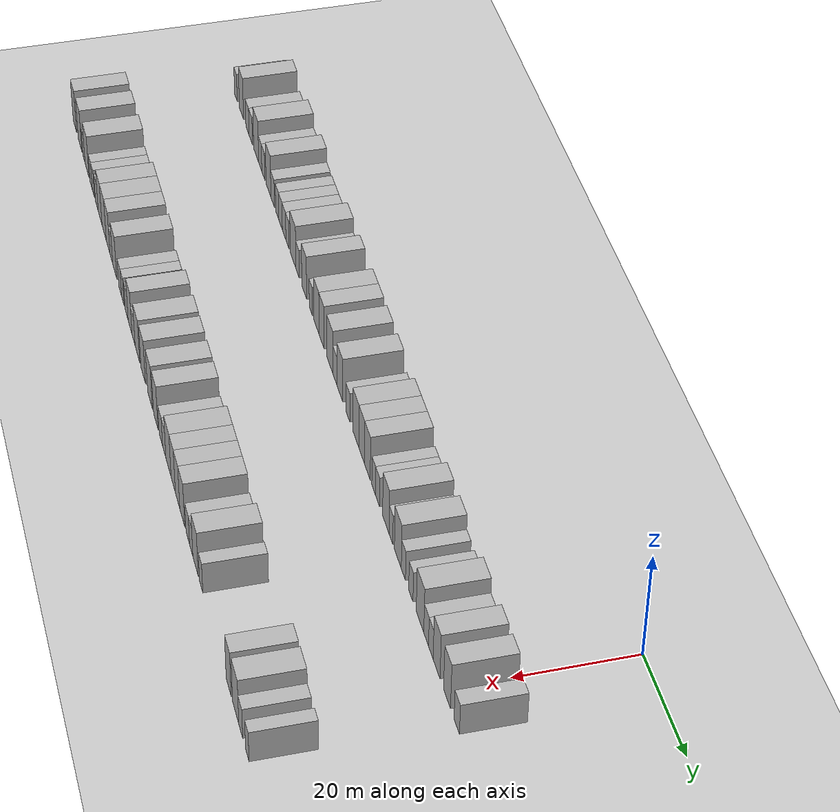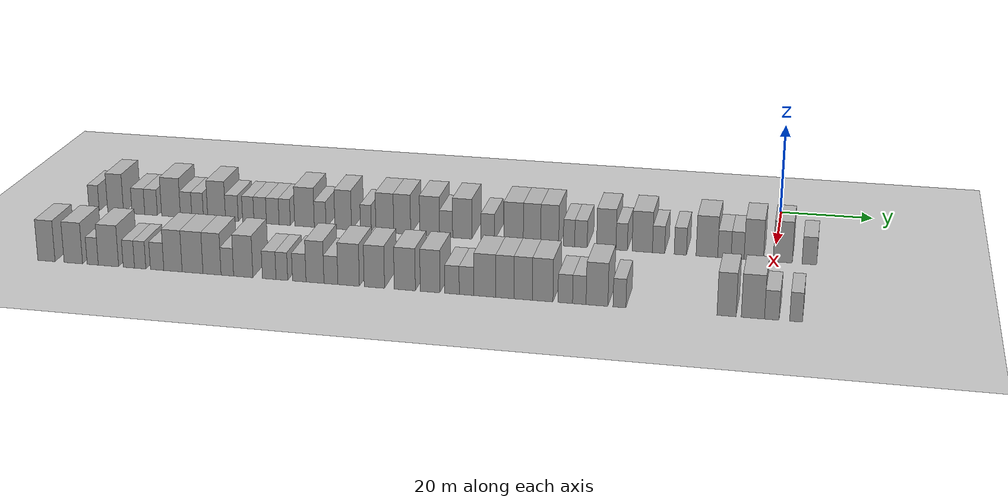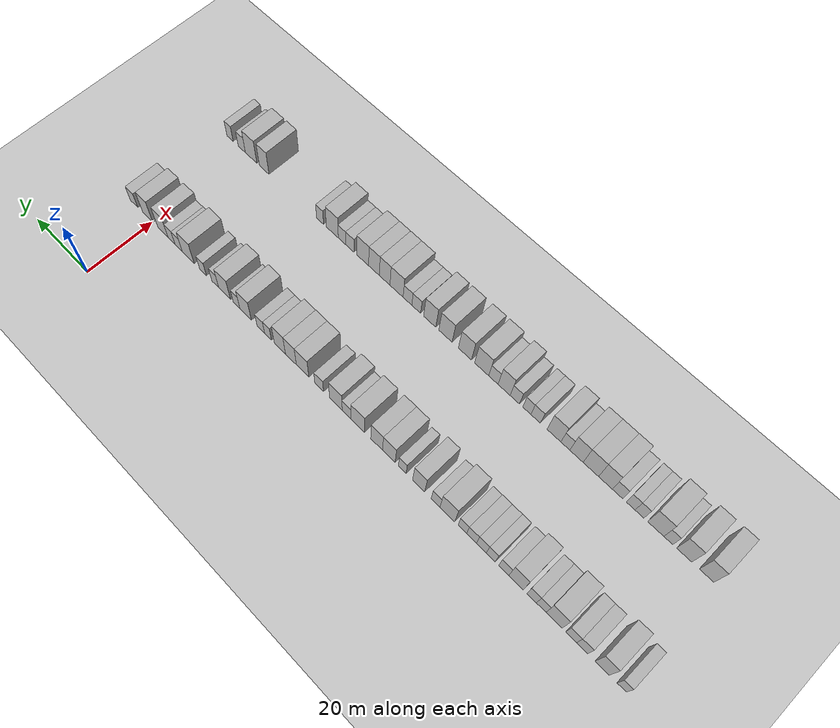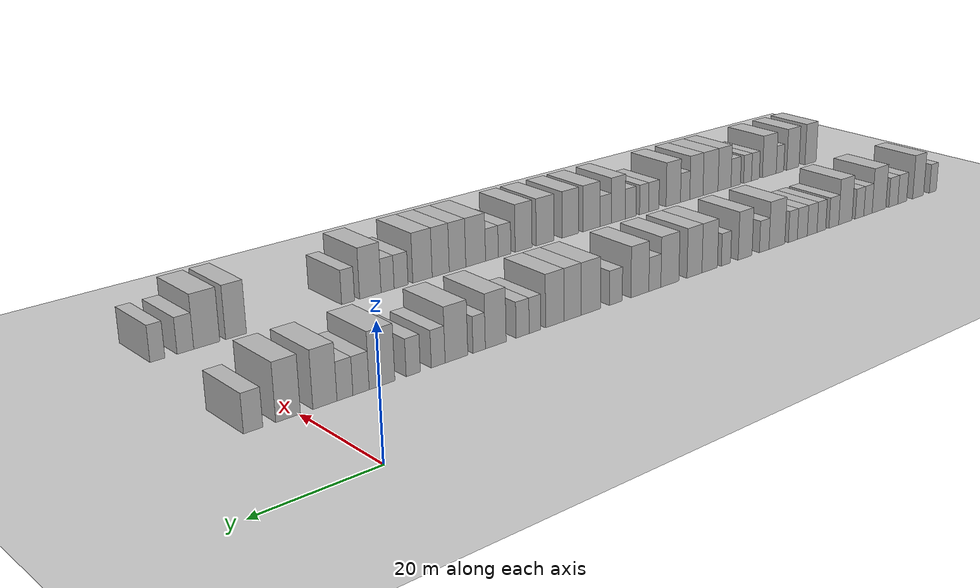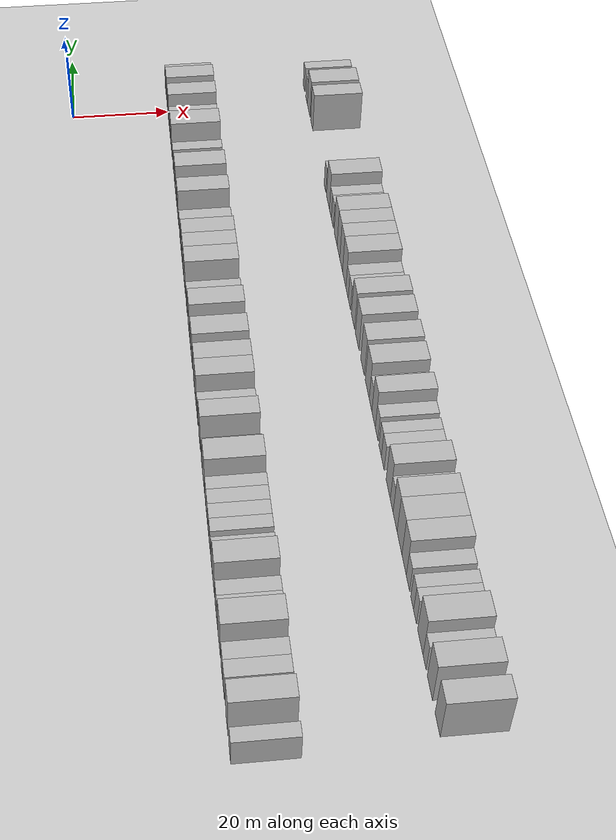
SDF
<sdf version="1.6">
 <world name="default">
  <include><name>ground_plane_1</name><uri>model://HANNAS_ground_plane</uri></include>
  <model name="building_72">
   <static>1</static>
   <pose>25.0000 -149.7639 0 0.000000 0.000000 0.000000</pose>
   <link name="link">
    <pose>0 0 3.00 0 0 0</pose>
    <collision name="collision"><geometry><box><size>10.0000 2.4107 6.0000</size></box></geometry></collision>
    <visual name="visual">
     <cast_shadows>0</cast_shadows>
     <geometry><box><size>10.0000 2.4107 6.0000</size></box></geometry>
     <material>
      <script>
       <uri>model://HANNAS_wall/materials/scripts</uri>
       <uri>model://HANNAS_wall/materials/textures</uri>
       <name>vrc/HANNAS_wall</name>
      </script>
     </material>
    </visual>
   </link>
  </model>
  <model name="building_73">
   <static>1</static>
   <pose>25.0000 -144.6903 0 0.000000 0.000000 0.000000</pose>
   <link name="link">
    <pose>0 0 4.50 0 0 0</pose>
    <collision name="collision"><geometry><box><size>10.0000 3.7367 9.0000</size></box></geometry></collision>
    <visual name="visual">
     <cast_shadows>0</cast_shadows>
     <geometry><box><size>10.0000 3.7367 9.0000</size></box></geometry>
     <material>
      <script>
       <uri>model://HANNAS_wall/materials/scripts</uri>
       <uri>model://HANNAS_wall/materials/textures</uri>
       <name>vrc/HANNAS_wall</name>
      </script>
     </material>
    </visual>
   </link>
  </model>
  <model name="building_74">
   <static>1</static>
   <pose>25.0000 -139.3331 0 0.000000 0.000000 0.000000</pose>
   <link name="link">
    <pose>0 0 3.00 0 0 0</pose>
    <collision name="collision"><geometry><box><size>10.0000 2.9777 6.0000</size></box></geometry></collision>
    <visual name="visual">
     <cast_shadows>0</cast_shadows>
     <geometry><box><size>10.0000 2.9777 6.0000</size></box></geometry>
     <material>
      <script>
       <uri>model://HANNAS_wall/materials/scripts</uri>
       <uri>model://HANNAS_wall/materials/textures</uri>
       <name>vrc/HANNAS_wall</name>
      </script>
     </material>
    </visual>
   </link>
  </model>
  <model name="building_75">
   <static>1</static>
   <pose>25.0000 -136.3701 0 0.000000 0.000000 0.000000</pose>
   <link name="link">
    <pose>0 0 3.00 0 0 0</pose>
    <collision name="collision"><geometry><box><size>10.0000 2.9482 6.0000</size></box></geometry></collision>
    <visual name="visual">
     <cast_shadows>0</cast_shadows>
     <geometry><box><size>10.0000 2.9482 6.0000</size></box></geometry>
     <material>
      <script>
       <uri>model://HANNAS_wall/materials/scripts</uri>
       <uri>model://HANNAS_wall/materials/textures</uri>
       <name>vrc/HANNAS_wall</name>
      </script>
     </material>
    </visual>
   </link>
  </model>
  <model name="building_76">
   <static>1</static>
   <pose>25.0000 -131.7027 0 0.000000 0.000000 0.000000</pose>
   <link name="link">
    <pose>0 0 4.50 0 0 0</pose>
    <collision name="collision"><geometry><box><size>10.0000 4.3865 9.0000</size></box></geometry></collision>
    <visual name="visual">
     <cast_shadows>0</cast_shadows>
     <geometry><box><size>10.0000 4.3865 9.0000</size></box></geometry>
     <material>
      <script>
       <uri>model://HANNAS_wall/materials/scripts</uri>
       <uri>model://HANNAS_wall/materials/textures</uri>
       <name>vrc/HANNAS_wall</name>
      </script>
     </material>
    </visual>
   </link>
  </model>
  <model name="building_77">
   <static>1</static>
   <pose>25.0000 -128.1891 0 0.000000 0.000000 0.000000</pose>
   <link name="link">
    <pose>0 0 3.00 0 0 0</pose>
    <collision name="collision"><geometry><box><size>10.0000 2.6407 6.0000</size></box></geometry></collision>
    <visual name="visual">
     <cast_shadows>0</cast_shadows>
     <geometry><box><size>10.0000 2.6407 6.0000</size></box></geometry>
     <material>
      <script>
       <uri>model://HANNAS_wall/materials/scripts</uri>
       <uri>model://HANNAS_wall/materials/textures</uri>
       <name>vrc/HANNAS_wall</name>
      </script>
     </material>
    </visual>
   </link>
  </model>
  <model name="building_78">
   <static>1</static>
   <pose>25.0000 -125.5254 0 0.000000 0.000000 0.000000</pose>
   <link name="link">
    <pose>0 0 3.00 0 0 0</pose>
    <collision name="collision"><geometry><box><size>10.0000 2.6868 6.0000</size></box></geometry></collision>
    <visual name="visual">
     <cast_shadows>0</cast_shadows>
     <geometry><box><size>10.0000 2.6868 6.0000</size></box></geometry>
     <material>
      <script>
       <uri>model://HANNAS_wall/materials/scripts</uri>
       <uri>model://HANNAS_wall/materials/textures</uri>
       <name>vrc/HANNAS_wall</name>
      </script>
     </material>
    </visual>
   </link>
  </model>
  <model name="building_79">
   <static>1</static>
   <pose>25.0000 -121.1328 0 0.000000 0.000000 0.000000</pose>
   <link name="link">
    <pose>0 0 4.50 0 0 0</pose>
    <collision name="collision"><geometry><box><size>10.0000 4.0984 9.0000</size></box></geometry></collision>
    <visual name="visual">
     <cast_shadows>0</cast_shadows>
     <geometry><box><size>10.0000 4.0984 9.0000</size></box></geometry>
     <material>
      <script>
       <uri>model://HANNAS_wall/materials/scripts</uri>
       <uri>model://HANNAS_wall/materials/textures</uri>
       <name>vrc/HANNAS_wall</name>
      </script>
     </material>
    </visual>
   </link>
  </model>
  <model name="building_80">
   <static>1</static>
   <pose>25.0000 -117.6221 0 0.000000 0.000000 0.000000</pose>
   <link name="link">
    <pose>0 0 3.00 0 0 0</pose>
    <collision name="collision"><geometry><box><size>10.0000 2.9230 6.0000</size></box></geometry></collision>
    <visual name="visual">
     <cast_shadows>0</cast_shadows>
     <geometry><box><size>10.0000 2.9230 6.0000</size></box></geometry>
     <material>
      <script>
       <uri>model://HANNAS_wall/materials/scripts</uri>
       <uri>model://HANNAS_wall/materials/textures</uri>
       <name>vrc/HANNAS_wall</name>
      </script>
     </material>
    </visual>
   </link>
  </model>
  <model name="building_81">
   <static>1</static>
   <pose>25.0000 -113.8651 0 0.000000 0.000000 0.000000</pose>
   <link name="link">
    <pose>0 0 3.00 0 0 0</pose>
    <collision name="collision"><geometry><box><size>10.0000 2.5910 6.0000</size></box></geometry></collision>
    <visual name="visual">
     <cast_shadows>0</cast_shadows>
     <geometry><box><size>10.0000 2.5910 6.0000</size></box></geometry>
     <material>
      <script>
       <uri>model://HANNAS_wall/materials/scripts</uri>
       <uri>model://HANNAS_wall/materials/textures</uri>
       <name>vrc/HANNAS_wall</name>
      </script>
     </material>
    </visual>
   </link>
  </model>
  <model name="building_82">
   <static>1</static>
   <pose>25.0000 -111.1434 0 0.000000 0.000000 0.000000</pose>
   <link name="link">
    <pose>0 0 3.00 0 0 0</pose>
    <collision name="collision"><geometry><box><size>10.0000 2.8523 6.0000</size></box></geometry></collision>
    <visual name="visual">
     <cast_shadows>0</cast_shadows>
     <geometry><box><size>10.0000 2.8523 6.0000</size></box></geometry>
     <material>
      <script>
       <uri>model://HANNAS_wall/materials/scripts</uri>
       <uri>model://HANNAS_wall/materials/textures</uri>
       <name>vrc/HANNAS_wall</name>
      </script>
     </material>
    </visual>
   </link>
  </model>
  <model name="building_83">
   <static>1</static>
   <pose>25.0000 -108.2769 0 0.000000 0.000000 0.000000</pose>
   <link name="link">
    <pose>0 0 3.00 0 0 0</pose>
    <collision name="collision"><geometry><box><size>10.0000 2.8808 6.0000</size></box></geometry></collision>
    <visual name="visual">
     <cast_shadows>0</cast_shadows>
     <geometry><box><size>10.0000 2.8808 6.0000</size></box></geometry>
     <material>
      <script>
       <uri>model://HANNAS_wall/materials/scripts</uri>
       <uri>model://HANNAS_wall/materials/textures</uri>
       <name>vrc/HANNAS_wall</name>
      </script>
     </material>
    </visual>
   </link>
  </model>
  <model name="building_84">
   <static>1</static>
   <pose>25.0000 -105.5612 0 0.000000 0.000000 0.000000</pose>
   <link name="link">
    <pose>0 0 3.00 0 0 0</pose>
    <collision name="collision"><geometry><box><size>10.0000 2.5506 6.0000</size></box></geometry></collision>
    <visual name="visual">
     <cast_shadows>0</cast_shadows>
     <geometry><box><size>10.0000 2.5506 6.0000</size></box></geometry>
     <material>
      <script>
       <uri>model://HANNAS_wall/materials/scripts</uri>
       <uri>model://HANNAS_wall/materials/textures</uri>
       <name>vrc/HANNAS_wall</name>
      </script>
     </material>
    </visual>
   </link>
  </model>
  <model name="building_85">
   <static>1</static>
   <pose>25.0000 -101.0731 0 0.000000 0.000000 0.000000</pose>
   <link name="link">
    <pose>0 0 4.50 0 0 0</pose>
    <collision name="collision"><geometry><box><size>10.0000 4.4258 9.0000</size></box></geometry></collision>
    <visual name="visual">
     <cast_shadows>0</cast_shadows>
     <geometry><box><size>10.0000 4.4258 9.0000</size></box></geometry>
     <material>
      <script>
       <uri>model://HANNAS_wall/materials/scripts</uri>
       <uri>model://HANNAS_wall/materials/textures</uri>
       <name>vrc/HANNAS_wall</name>
      </script>
     </material>
    </visual>
   </link>
  </model>
  <model name="building_86">
   <static>1</static>
   <pose>25.0000 -97.5372 0 0.000000 0.000000 0.000000</pose>
   <link name="link">
    <pose>0 0 3.00 0 0 0</pose>
    <collision name="collision"><geometry><box><size>10.0000 2.6460 6.0000</size></box></geometry></collision>
    <visual name="visual">
     <cast_shadows>0</cast_shadows>
     <geometry><box><size>10.0000 2.6460 6.0000</size></box></geometry>
     <material>
      <script>
       <uri>model://HANNAS_wall/materials/scripts</uri>
       <uri>model://HANNAS_wall/materials/textures</uri>
       <name>vrc/HANNAS_wall</name>
      </script>
     </material>
    </visual>
   </link>
  </model>
  <model name="building_87">
   <static>1</static>
   <pose>25.0000 -92.3547 0 0.000000 0.000000 0.000000</pose>
   <link name="link">
    <pose>0 0 4.50 0 0 0</pose>
    <collision name="collision"><geometry><box><size>10.0000 3.7190 9.0000</size></box></geometry></collision>
    <visual name="visual">
     <cast_shadows>0</cast_shadows>
     <geometry><box><size>10.0000 3.7190 9.0000</size></box></geometry>
     <material>
      <script>
       <uri>model://HANNAS_wall/materials/scripts</uri>
       <uri>model://HANNAS_wall/materials/textures</uri>
       <name>vrc/HANNAS_wall</name>
      </script>
     </material>
    </visual>
   </link>
  </model>
  <model name="building_88">
   <static>1</static>
   <pose>25.0000 -87.2801 0 0.000000 0.000000 0.000000</pose>
   <link name="link">
    <pose>0 0 3.00 0 0 0</pose>
    <collision name="collision"><geometry><box><size>10.0000 2.4302 6.0000</size></box></geometry></collision>
    <visual name="visual">
     <cast_shadows>0</cast_shadows>
     <geometry><box><size>10.0000 2.4302 6.0000</size></box></geometry>
     <material>
      <script>
       <uri>model://HANNAS_wall/materials/scripts</uri>
       <uri>model://HANNAS_wall/materials/textures</uri>
       <name>vrc/HANNAS_wall</name>
      </script>
     </material>
    </visual>
   </link>
  </model>
  <model name="building_89">
   <static>1</static>
   <pose>25.0000 -83.0822 0 0.000000 0.000000 0.000000</pose>
   <link name="link">
    <pose>0 0 4.50 0 0 0</pose>
    <collision name="collision"><geometry><box><size>10.0000 3.9657 9.0000</size></box></geometry></collision>
    <visual name="visual">
     <cast_shadows>0</cast_shadows>
     <geometry><box><size>10.0000 3.9657 9.0000</size></box></geometry>
     <material>
      <script>
       <uri>model://HANNAS_wall/materials/scripts</uri>
       <uri>model://HANNAS_wall/materials/textures</uri>
       <name>vrc/HANNAS_wall</name>
      </script>
     </material>
    </visual>
   </link>
  </model>
  <model name="building_90">
   <static>1</static>
   <pose>25.0000 -79.2211 0 0.000000 0.000000 0.000000</pose>
   <link name="link">
    <pose>0 0 4.50 0 0 0</pose>
    <collision name="collision"><geometry><box><size>10.0000 3.7565 9.0000</size></box></geometry></collision>
    <visual name="visual">
     <cast_shadows>0</cast_shadows>
     <geometry><box><size>10.0000 3.7565 9.0000</size></box></geometry>
     <material>
      <script>
       <uri>model://HANNAS_wall/materials/scripts</uri>
       <uri>model://HANNAS_wall/materials/textures</uri>
       <name>vrc/HANNAS_wall</name>
      </script>
     </material>
    </visual>
   </link>
  </model>
  <model name="building_91">
   <static>1</static>
   <pose>25.0000 -73.1525 0 0.000000 0.000000 0.000000</pose>
   <link name="link">
    <pose>0 0 4.50 0 0 0</pose>
    <collision name="collision"><geometry><box><size>10.0000 4.3806 9.0000</size></box></geometry></collision>
    <visual name="visual">
     <cast_shadows>0</cast_shadows>
     <geometry><box><size>10.0000 4.3806 9.0000</size></box></geometry>
     <material>
      <script>
       <uri>model://HANNAS_wall/materials/scripts</uri>
       <uri>model://HANNAS_wall/materials/textures</uri>
       <name>vrc/HANNAS_wall</name>
      </script>
     </material>
    </visual>
   </link>
  </model>
  <model name="building_92">
   <static>1</static>
   <pose>25.0000 -69.5285 0 0.000000 0.000000 0.000000</pose>
   <link name="link">
    <pose>0 0 3.00 0 0 0</pose>
    <collision name="collision"><geometry><box><size>10.0000 2.8675 6.0000</size></box></geometry></collision>
    <visual name="visual">
     <cast_shadows>0</cast_shadows>
     <geometry><box><size>10.0000 2.8675 6.0000</size></box></geometry>
     <material>
      <script>
       <uri>model://HANNAS_wall/materials/scripts</uri>
       <uri>model://HANNAS_wall/materials/textures</uri>
       <name>vrc/HANNAS_wall</name>
      </script>
     </material>
    </visual>
   </link>
  </model>
  <model name="building_93">
   <static>1</static>
   <pose>25.0000 -65.9982 0 0.000000 0.000000 0.000000</pose>
   <link name="link">
    <pose>0 0 4.50 0 0 0</pose>
    <collision name="collision"><geometry><box><size>10.0000 4.1932 9.0000</size></box></geometry></collision>
    <visual name="visual">
     <cast_shadows>0</cast_shadows>
     <geometry><box><size>10.0000 4.1932 9.0000</size></box></geometry>
     <material>
      <script>
       <uri>model://HANNAS_wall/materials/scripts</uri>
       <uri>model://HANNAS_wall/materials/textures</uri>
       <name>vrc/HANNAS_wall</name>
      </script>
     </material>
    </visual>
   </link>
  </model>
  <model name="building_94">
   <static>1</static>
   <pose>25.0000 -60.4333 0 0.000000 0.000000 0.000000</pose>
   <link name="link">
    <pose>0 0 3.00 0 0 0</pose>
    <collision name="collision"><geometry><box><size>10.0000 2.9366 6.0000</size></box></geometry></collision>
    <visual name="visual">
     <cast_shadows>0</cast_shadows>
     <geometry><box><size>10.0000 2.9366 6.0000</size></box></geometry>
     <material>
      <script>
       <uri>model://HANNAS_wall/materials/scripts</uri>
       <uri>model://HANNAS_wall/materials/textures</uri>
       <name>vrc/HANNAS_wall</name>
      </script>
     </material>
    </visual>
   </link>
  </model>
  <model name="building_95">
   <static>1</static>
   <pose>25.0000 -54.8550 0 0.000000 0.000000 0.000000</pose>
   <link name="link">
    <pose>0 0 4.50 0 0 0</pose>
    <collision name="collision"><geometry><box><size>10.0000 4.2199 9.0000</size></box></geometry></collision>
    <visual name="visual">
     <cast_shadows>0</cast_shadows>
     <geometry><box><size>10.0000 4.2199 9.0000</size></box></geometry>
     <material>
      <script>
       <uri>model://HANNAS_wall/materials/scripts</uri>
       <uri>model://HANNAS_wall/materials/textures</uri>
       <name>vrc/HANNAS_wall</name>
      </script>
     </material>
    </visual>
   </link>
  </model>
  <model name="building_96">
   <static>1</static>
   <pose>25.0000 -50.8643 0 0.000000 0.000000 0.000000</pose>
   <link name="link">
    <pose>0 0 4.50 0 0 0</pose>
    <collision name="collision"><geometry><box><size>10.0000 3.7616 9.0000</size></box></geometry></collision>
    <visual name="visual">
     <cast_shadows>0</cast_shadows>
     <geometry><box><size>10.0000 3.7616 9.0000</size></box></geometry>
     <material>
      <script>
       <uri>model://HANNAS_wall/materials/scripts</uri>
       <uri>model://HANNAS_wall/materials/textures</uri>
       <name>vrc/HANNAS_wall</name>
      </script>
     </material>
    </visual>
   </link>
  </model>
  <model name="building_97">
   <static>1</static>
   <pose>25.0000 -47.0470 0 0.000000 0.000000 0.000000</pose>
   <link name="link">
    <pose>0 0 4.50 0 0 0</pose>
    <collision name="collision"><geometry><box><size>10.0000 3.8730 9.0000</size></box></geometry></collision>
    <visual name="visual">
     <cast_shadows>0</cast_shadows>
     <geometry><box><size>10.0000 3.8730 9.0000</size></box></geometry>
     <material>
      <script>
       <uri>model://HANNAS_wall/materials/scripts</uri>
       <uri>model://HANNAS_wall/materials/textures</uri>
       <name>vrc/HANNAS_wall</name>
      </script>
     </material>
    </visual>
   </link>
  </model>
  <model name="building_98">
   <static>1</static>
   <pose>25.0000 -42.9027 0 0.000000 0.000000 0.000000</pose>
   <link name="link">
    <pose>0 0 3.00 0 0 0</pose>
    <collision name="collision"><geometry><box><size>10.0000 2.4157 6.0000</size></box></geometry></collision>
    <visual name="visual">
     <cast_shadows>0</cast_shadows>
     <geometry><box><size>10.0000 2.4157 6.0000</size></box></geometry>
     <material>
      <script>
       <uri>model://HANNAS_wall/materials/scripts</uri>
       <uri>model://HANNAS_wall/materials/textures</uri>
       <name>vrc/HANNAS_wall</name>
      </script>
     </material>
    </visual>
   </link>
  </model>
  <model name="building_99">
   <static>1</static>
   <pose>25.0000 -40.3628 0 0.000000 0.000000 0.000000</pose>
   <link name="link">
    <pose>0 0 3.00 0 0 0</pose>
    <collision name="collision"><geometry><box><size>10.0000 2.6640 6.0000</size></box></geometry></collision>
    <visual name="visual">
     <cast_shadows>0</cast_shadows>
     <geometry><box><size>10.0000 2.6640 6.0000</size></box></geometry>
     <material>
      <script>
       <uri>model://HANNAS_wall/materials/scripts</uri>
       <uri>model://HANNAS_wall/materials/textures</uri>
       <name>vrc/HANNAS_wall</name>
      </script>
     </material>
    </visual>
   </link>
  </model>
  <model name="building_100">
   <static>1</static>
   <pose>25.0000 -34.9728 0 0.000000 0.000000 0.000000</pose>
   <link name="link">
    <pose>0 0 4.50 0 0 0</pose>
    <collision name="collision"><geometry><box><size>10.0000 4.1158 9.0000</size></box></geometry></collision>
    <visual name="visual">
     <cast_shadows>0</cast_shadows>
     <geometry><box><size>10.0000 4.1158 9.0000</size></box></geometry>
     <material>
      <script>
       <uri>model://HANNAS_wall/materials/scripts</uri>
       <uri>model://HANNAS_wall/materials/textures</uri>
       <name>vrc/HANNAS_wall</name>
      </script>
     </material>
    </visual>
   </link>
  </model>
  <model name="building_101">
   <static>1</static>
   <pose>25.0000 -31.7140 0 0.000000 0.000000 0.000000</pose>
   <link name="link">
    <pose>0 0 3.00 0 0 0</pose>
    <collision name="collision"><geometry><box><size>10.0000 2.4019 6.0000</size></box></geometry></collision>
    <visual name="visual">
     <cast_shadows>0</cast_shadows>
     <geometry><box><size>10.0000 2.4019 6.0000</size></box></geometry>
     <material>
      <script>
       <uri>model://HANNAS_wall/materials/scripts</uri>
       <uri>model://HANNAS_wall/materials/textures</uri>
       <name>vrc/HANNAS_wall</name>
      </script>
     </material>
    </visual>
   </link>
  </model>
  <model name="building_102">
   <static>1</static>
   <pose>25.0000 -27.3661 0 0.000000 0.000000 0.000000</pose>
   <link name="link">
    <pose>0 0 4.50 0 0 0</pose>
    <collision name="collision"><geometry><box><size>10.0000 4.2939 9.0000</size></box></geometry></collision>
    <visual name="visual">
     <cast_shadows>0</cast_shadows>
     <geometry><box><size>10.0000 4.2939 9.0000</size></box></geometry>
     <material>
      <script>
       <uri>model://HANNAS_wall/materials/scripts</uri>
       <uri>model://HANNAS_wall/materials/textures</uri>
       <name>vrc/HANNAS_wall</name>
      </script>
     </material>
    </visual>
   </link>
  </model>
  <model name="building_103">
   <static>1</static>
   <pose>25.0000 -23.9386 0 0.000000 0.000000 0.000000</pose>
   <link name="link">
    <pose>0 0 3.00 0 0 0</pose>
    <collision name="collision"><geometry><box><size>10.0000 2.5613 6.0000</size></box></geometry></collision>
    <visual name="visual">
     <cast_shadows>0</cast_shadows>
     <geometry><box><size>10.0000 2.5613 6.0000</size></box></geometry>
     <material>
      <script>
       <uri>model://HANNAS_wall/materials/scripts</uri>
       <uri>model://HANNAS_wall/materials/textures</uri>
       <name>vrc/HANNAS_wall</name>
      </script>
     </material>
    </visual>
   </link>
  </model>
  <model name="building_104">
   <static>1</static>
   <pose>25.0000 -19.3728 0 0.000000 0.000000 0.000000</pose>
   <link name="link">
    <pose>0 0 3.00 0 0 0</pose>
    <collision name="collision"><geometry><box><size>10.0000 2.5702 6.0000</size></box></geometry></collision>
    <visual name="visual">
     <cast_shadows>0</cast_shadows>
     <geometry><box><size>10.0000 2.5702 6.0000</size></box></geometry>
     <material>
      <script>
       <uri>model://HANNAS_wall/materials/scripts</uri>
       <uri>model://HANNAS_wall/materials/textures</uri>
       <name>vrc/HANNAS_wall</name>
      </script>
     </material>
    </visual>
   </link>
  </model>
  <model name="building_105">
   <static>1</static>
   <pose>25.0000 -13.8428 0 0.000000 0.000000 0.000000</pose>
   <link name="link">
    <pose>0 0 4.50 0 0 0</pose>
    <collision name="collision"><geometry><box><size>10.0000 4.4898 9.0000</size></box></geometry></collision>
    <visual name="visual">
     <cast_shadows>0</cast_shadows>
     <geometry><box><size>10.0000 4.4898 9.0000</size></box></geometry>
     <material>
      <script>
       <uri>model://HANNAS_wall/materials/scripts</uri>
       <uri>model://HANNAS_wall/materials/textures</uri>
       <name>vrc/HANNAS_wall</name>
      </script>
     </material>
    </visual>
   </link>
  </model>
  <model name="building_106">
   <static>1</static>
   <pose>25.0000 -10.2093 0 0.000000 0.000000 0.000000</pose>
   <link name="link">
    <pose>0 0 3.00 0 0 0</pose>
    <collision name="collision"><geometry><box><size>10.0000 2.7771 6.0000</size></box></geometry></collision>
    <visual name="visual">
     <cast_shadows>0</cast_shadows>
     <geometry><box><size>10.0000 2.7771 6.0000</size></box></geometry>
     <material>
      <script>
       <uri>model://HANNAS_wall/materials/scripts</uri>
       <uri>model://HANNAS_wall/materials/textures</uri>
       <name>vrc/HANNAS_wall</name>
      </script>
     </material>
    </visual>
   </link>
  </model>
  <model name="building_107">
   <static>1</static>
   <pose>25.0000 -7.4839 0 0.000000 0.000000 0.000000</pose>
   <link name="link">
    <pose>0 0 3.00 0 0 0</pose>
    <collision name="collision"><geometry><box><size>10.0000 2.6736 6.0000</size></box></geometry></collision>
    <visual name="visual">
     <cast_shadows>0</cast_shadows>
     <geometry><box><size>10.0000 2.6736 6.0000</size></box></geometry>
     <material>
      <script>
       <uri>model://HANNAS_wall/materials/scripts</uri>
       <uri>model://HANNAS_wall/materials/textures</uri>
       <name>vrc/HANNAS_wall</name>
      </script>
     </material>
    </visual>
   </link>
  </model>
  <model name="building_108">
   <static>1</static>
   <pose>25.0000 -4.1596 0 0.000000 0.000000 0.000000</pose>
   <link name="link">
    <pose>0 0 4.50 0 0 0</pose>
    <collision name="collision"><geometry><box><size>10.0000 3.9751 9.0000</size></box></geometry></collision>
    <visual name="visual">
     <cast_shadows>0</cast_shadows>
     <geometry><box><size>10.0000 3.9751 9.0000</size></box></geometry>
     <material>
      <script>
       <uri>model://HANNAS_wall/materials/scripts</uri>
       <uri>model://HANNAS_wall/materials/textures</uri>
       <name>vrc/HANNAS_wall</name>
      </script>
     </material>
    </visual>
   </link>
  </model>
  <model name="building_109">
   <static>1</static>
   <pose>25.0000 1.7895 0 0.000000 0.000000 0.000000</pose>
   <link name="link">
    <pose>0 0 4.50 0 0 0</pose>
    <collision name="collision"><geometry><box><size>10.0000 3.9231 9.0000</size></box></geometry></collision>
    <visual name="visual">
     <cast_shadows>0</cast_shadows>
     <geometry><box><size>10.0000 3.9231 9.0000</size></box></geometry>
     <material>
      <script>
       <uri>model://HANNAS_wall/materials/scripts</uri>
       <uri>model://HANNAS_wall/materials/textures</uri>
       <name>vrc/HANNAS_wall</name>
      </script>
     </material>
    </visual>
   </link>
  </model>
  <model name="building_110">
   <static>1</static>
   <pose>25.0000 7.2394 0 0.000000 0.000000 0.000000</pose>
   <link name="link">
    <pose>0 0 3.00 0 0 0</pose>
    <collision name="collision"><geometry><box><size>10.0000 2.9767 6.0000</size></box></geometry></collision>
    <visual name="visual">
     <cast_shadows>0</cast_shadows>
     <geometry><box><size>10.0000 2.9767 6.0000</size></box></geometry>
     <material>
      <script>
       <uri>model://HANNAS_wall/materials/scripts</uri>
       <uri>model://HANNAS_wall/materials/textures</uri>
       <name>vrc/HANNAS_wall</name>
      </script>
     </material>
    </visual>
   </link>
  </model>
  <model name="building_293">
   <static>1</static>
   <pose>55.0000 -147.7000 0 0.000000 0.000000 0.000000</pose>
   <link name="link">
    <pose>0 0 4.50 0 0 0</pose>
    <collision name="collision"><geometry><box><size>10.0000 3.8156 9.0000</size></box></geometry></collision>
    <visual name="visual">
     <cast_shadows>0</cast_shadows>
     <geometry><box><size>10.0000 3.8156 9.0000</size></box></geometry>
     <material>
      <script>
       <uri>model://HANNAS_wall/materials/scripts</uri>
       <uri>model://HANNAS_wall/materials/textures</uri>
       <name>vrc/HANNAS_wall</name>
      </script>
     </material>
    </visual>
   </link>
  </model>
  <model name="building_294">
   <static>1</static>
   <pose>55.0000 -141.7543 0 0.000000 0.000000 0.000000</pose>
   <link name="link">
    <pose>0 0 4.50 0 0 0</pose>
    <collision name="collision"><geometry><box><size>10.0000 4.0759 9.0000</size></box></geometry></collision>
    <visual name="visual">
     <cast_shadows>0</cast_shadows>
     <geometry><box><size>10.0000 4.0759 9.0000</size></box></geometry>
     <material>
      <script>
       <uri>model://HANNAS_wall/materials/scripts</uri>
       <uri>model://HANNAS_wall/materials/textures</uri>
       <name>vrc/HANNAS_wall</name>
      </script>
     </material>
    </visual>
   </link>
  </model>
  <model name="building_295">
   <static>1</static>
   <pose>55.0000 -137.4959 0 0.000000 0.000000 0.000000</pose>
   <link name="link">
    <pose>0 0 3.00 0 0 0</pose>
    <collision name="collision"><geometry><box><size>10.0000 2.4409 6.0000</size></box></geometry></collision>
    <visual name="visual">
     <cast_shadows>0</cast_shadows>
     <geometry><box><size>10.0000 2.4409 6.0000</size></box></geometry>
     <material>
      <script>
       <uri>model://HANNAS_wall/materials/scripts</uri>
       <uri>model://HANNAS_wall/materials/textures</uri>
       <name>vrc/HANNAS_wall</name>
      </script>
     </material>
    </visual>
   </link>
  </model>
  <model name="building_296">
   <static>1</static>
   <pose>55.0000 -134.0514 0 0.000000 0.000000 0.000000</pose>
   <link name="link">
    <pose>0 0 4.50 0 0 0</pose>
    <collision name="collision"><geometry><box><size>10.0000 4.4480 9.0000</size></box></geometry></collision>
    <visual name="visual">
     <cast_shadows>0</cast_shadows>
     <geometry><box><size>10.0000 4.4480 9.0000</size></box></geometry>
     <material>
      <script>
       <uri>model://HANNAS_wall/materials/scripts</uri>
       <uri>model://HANNAS_wall/materials/textures</uri>
       <name>vrc/HANNAS_wall</name>
      </script>
     </material>
    </visual>
   </link>
  </model>
  <model name="building_297">
   <static>1</static>
   <pose>55.0000 -129.5975 0 0.000000 0.000000 0.000000</pose>
   <link name="link">
    <pose>0 0 3.00 0 0 0</pose>
    <collision name="collision"><geometry><box><size>10.0000 2.4599 6.0000</size></box></geometry></collision>
    <visual name="visual">
     <cast_shadows>0</cast_shadows>
     <geometry><box><size>10.0000 2.4599 6.0000</size></box></geometry>
     <material>
      <script>
       <uri>model://HANNAS_wall/materials/scripts</uri>
       <uri>model://HANNAS_wall/materials/textures</uri>
       <name>vrc/HANNAS_wall</name>
      </script>
     </material>
    </visual>
   </link>
  </model>
  <model name="building_298">
   <static>1</static>
   <pose>55.0000 -127.1387 0 0.000000 0.000000 0.000000</pose>
   <link name="link">
    <pose>0 0 3.00 0 0 0</pose>
    <collision name="collision"><geometry><box><size>10.0000 2.4577 6.0000</size></box></geometry></collision>
    <visual name="visual">
     <cast_shadows>0</cast_shadows>
     <geometry><box><size>10.0000 2.4577 6.0000</size></box></geometry>
     <material>
      <script>
       <uri>model://HANNAS_wall/materials/scripts</uri>
       <uri>model://HANNAS_wall/materials/textures</uri>
       <name>vrc/HANNAS_wall</name>
      </script>
     </material>
    </visual>
   </link>
  </model>
  <model name="building_299">
   <static>1</static>
   <pose>55.0000 -123.4584 0 0.000000 0.000000 0.000000</pose>
   <link name="link">
    <pose>0 0 3.00 0 0 0</pose>
    <collision name="collision"><geometry><box><size>10.0000 2.9030 6.0000</size></box></geometry></collision>
    <visual name="visual">
     <cast_shadows>0</cast_shadows>
     <geometry><box><size>10.0000 2.9030 6.0000</size></box></geometry>
     <material>
      <script>
       <uri>model://HANNAS_wall/materials/scripts</uri>
       <uri>model://HANNAS_wall/materials/textures</uri>
       <name>vrc/HANNAS_wall</name>
      </script>
     </material>
    </visual>
   </link>
  </model>
  <model name="building_300">
   <static>1</static>
   <pose>55.0000 -120.0324 0 0.000000 0.000000 0.000000</pose>
   <link name="link">
    <pose>0 0 4.50 0 0 0</pose>
    <collision name="collision"><geometry><box><size>10.0000 3.9489 9.0000</size></box></geometry></collision>
    <visual name="visual">
     <cast_shadows>0</cast_shadows>
     <geometry><box><size>10.0000 3.9489 9.0000</size></box></geometry>
     <material>
      <script>
       <uri>model://HANNAS_wall/materials/scripts</uri>
       <uri>model://HANNAS_wall/materials/textures</uri>
       <name>vrc/HANNAS_wall</name>
      </script>
     </material>
    </visual>
   </link>
  </model>
  <model name="building_301">
   <static>1</static>
   <pose>55.0000 -115.8211 0 0.000000 0.000000 0.000000</pose>
   <link name="link">
    <pose>0 0 4.50 0 0 0</pose>
    <collision name="collision"><geometry><box><size>10.0000 4.4736 9.0000</size></box></geometry></collision>
    <visual name="visual">
     <cast_shadows>0</cast_shadows>
     <geometry><box><size>10.0000 4.4736 9.0000</size></box></geometry>
     <material>
      <script>
       <uri>model://HANNAS_wall/materials/scripts</uri>
       <uri>model://HANNAS_wall/materials/textures</uri>
       <name>vrc/HANNAS_wall</name>
      </script>
     </material>
    </visual>
   </link>
  </model>
  <model name="building_302">
   <static>1</static>
   <pose>55.0000 -111.6535 0 0.000000 0.000000 0.000000</pose>
   <link name="link">
    <pose>0 0 4.50 0 0 0</pose>
    <collision name="collision"><geometry><box><size>10.0000 3.8617 9.0000</size></box></geometry></collision>
    <visual name="visual">
     <cast_shadows>0</cast_shadows>
     <geometry><box><size>10.0000 3.8617 9.0000</size></box></geometry>
     <material>
      <script>
       <uri>model://HANNAS_wall/materials/scripts</uri>
       <uri>model://HANNAS_wall/materials/textures</uri>
       <name>vrc/HANNAS_wall</name>
      </script>
     </material>
    </visual>
   </link>
  </model>
  <model name="building_303">
   <static>1</static>
   <pose>55.0000 -108.3858 0 0.000000 0.000000 0.000000</pose>
   <link name="link">
    <pose>0 0 3.00 0 0 0</pose>
    <collision name="collision"><geometry><box><size>10.0000 2.6736 6.0000</size></box></geometry></collision>
    <visual name="visual">
     <cast_shadows>0</cast_shadows>
     <geometry><box><size>10.0000 2.6736 6.0000</size></box></geometry>
     <material>
      <script>
       <uri>model://HANNAS_wall/materials/scripts</uri>
       <uri>model://HANNAS_wall/materials/textures</uri>
       <name>vrc/HANNAS_wall</name>
      </script>
     </material>
    </visual>
   </link>
  </model>
  <model name="building_304">
   <static>1</static>
   <pose>55.0000 -104.9985 0 0.000000 0.000000 0.000000</pose>
   <link name="link">
    <pose>0 0 4.50 0 0 0</pose>
    <collision name="collision"><geometry><box><size>10.0000 4.1012 9.0000</size></box></geometry></collision>
    <visual name="visual">
     <cast_shadows>0</cast_shadows>
     <geometry><box><size>10.0000 4.1012 9.0000</size></box></geometry>
     <material>
      <script>
       <uri>model://HANNAS_wall/materials/scripts</uri>
       <uri>model://HANNAS_wall/materials/textures</uri>
       <name>vrc/HANNAS_wall</name>
      </script>
     </material>
    </visual>
   </link>
  </model>
  <model name="building_305">
   <static>1</static>
   <pose>55.0000 -99.5127 0 0.000000 0.000000 0.000000</pose>
   <link name="link">
    <pose>0 0 3.00 0 0 0</pose>
    <collision name="collision"><geometry><box><size>10.0000 2.8704 6.0000</size></box></geometry></collision>
    <visual name="visual">
     <cast_shadows>0</cast_shadows>
     <geometry><box><size>10.0000 2.8704 6.0000</size></box></geometry>
     <material>
      <script>
       <uri>model://HANNAS_wall/materials/scripts</uri>
       <uri>model://HANNAS_wall/materials/textures</uri>
       <name>vrc/HANNAS_wall</name>
      </script>
     </material>
    </visual>
   </link>
  </model>
  <model name="building_306">
   <static>1</static>
   <pose>55.0000 -96.8412 0 0.000000 0.000000 0.000000</pose>
   <link name="link">
    <pose>0 0 3.00 0 0 0</pose>
    <collision name="collision"><geometry><box><size>10.0000 2.4726 6.0000</size></box></geometry></collision>
    <visual name="visual">
     <cast_shadows>0</cast_shadows>
     <geometry><box><size>10.0000 2.4726 6.0000</size></box></geometry>
     <material>
      <script>
       <uri>model://HANNAS_wall/materials/scripts</uri>
       <uri>model://HANNAS_wall/materials/textures</uri>
       <name>vrc/HANNAS_wall</name>
      </script>
     </material>
    </visual>
   </link>
  </model>
  <model name="building_307">
   <static>1</static>
   <pose>55.0000 -93.1839 0 0.000000 0.000000 0.000000</pose>
   <link name="link">
    <pose>0 0 3.00 0 0 0</pose>
    <collision name="collision"><geometry><box><size>10.0000 2.8420 6.0000</size></box></geometry></collision>
    <visual name="visual">
     <cast_shadows>0</cast_shadows>
     <geometry><box><size>10.0000 2.8420 6.0000</size></box></geometry>
     <material>
      <script>
       <uri>model://HANNAS_wall/materials/scripts</uri>
       <uri>model://HANNAS_wall/materials/textures</uri>
       <name>vrc/HANNAS_wall</name>
      </script>
     </material>
    </visual>
   </link>
  </model>
  <model name="building_308">
   <static>1</static>
   <pose>55.0000 -89.8870 0 0.000000 0.000000 0.000000</pose>
   <link name="link">
    <pose>0 0 4.50 0 0 0</pose>
    <collision name="collision"><geometry><box><size>10.0000 3.7516 9.0000</size></box></geometry></collision>
    <visual name="visual">
     <cast_shadows>0</cast_shadows>
     <geometry><box><size>10.0000 3.7516 9.0000</size></box></geometry>
     <material>
      <script>
       <uri>model://HANNAS_wall/materials/scripts</uri>
       <uri>model://HANNAS_wall/materials/textures</uri>
       <name>vrc/HANNAS_wall</name>
      </script>
     </material>
    </visual>
   </link>
  </model>
  <model name="building_309">
   <static>1</static>
   <pose>55.0000 -86.5588 0 0.000000 0.000000 0.000000</pose>
   <link name="link">
    <pose>0 0 3.00 0 0 0</pose>
    <collision name="collision"><geometry><box><size>10.0000 2.9049 6.0000</size></box></geometry></collision>
    <visual name="visual">
     <cast_shadows>0</cast_shadows>
     <geometry><box><size>10.0000 2.9049 6.0000</size></box></geometry>
     <material>
      <script>
       <uri>model://HANNAS_wall/materials/scripts</uri>
       <uri>model://HANNAS_wall/materials/textures</uri>
       <name>vrc/HANNAS_wall</name>
      </script>
     </material>
    </visual>
   </link>
  </model>
  <model name="building_310">
   <static>1</static>
   <pose>55.0000 -82.8778 0 0.000000 0.000000 0.000000</pose>
   <link name="link">
    <pose>0 0 4.50 0 0 0</pose>
    <collision name="collision"><geometry><box><size>10.0000 4.4571 9.0000</size></box></geometry></collision>
    <visual name="visual">
     <cast_shadows>0</cast_shadows>
     <geometry><box><size>10.0000 4.4571 9.0000</size></box></geometry>
     <material>
      <script>
       <uri>model://HANNAS_wall/materials/scripts</uri>
       <uri>model://HANNAS_wall/materials/textures</uri>
       <name>vrc/HANNAS_wall</name>
      </script>
     </material>
    </visual>
   </link>
  </model>
  <model name="building_311">
   <static>1</static>
   <pose>55.0000 -77.5526 0 0.000000 0.000000 0.000000</pose>
   <link name="link">
    <pose>0 0 4.50 0 0 0</pose>
    <collision name="collision"><geometry><box><size>10.0000 4.1934 9.0000</size></box></geometry></collision>
    <visual name="visual">
     <cast_shadows>0</cast_shadows>
     <geometry><box><size>10.0000 4.1934 9.0000</size></box></geometry>
     <material>
      <script>
       <uri>model://HANNAS_wall/materials/scripts</uri>
       <uri>model://HANNAS_wall/materials/textures</uri>
       <name>vrc/HANNAS_wall</name>
      </script>
     </material>
    </visual>
   </link>
  </model>
  <model name="building_312">
   <static>1</static>
   <pose>55.0000 -71.2942 0 0.000000 0.000000 0.000000</pose>
   <link name="link">
    <pose>0 0 4.50 0 0 0</pose>
    <collision name="collision"><geometry><box><size>10.0000 4.3234 9.0000</size></box></geometry></collision>
    <visual name="visual">
     <cast_shadows>0</cast_shadows>
     <geometry><box><size>10.0000 4.3234 9.0000</size></box></geometry>
     <material>
      <script>
       <uri>model://HANNAS_wall/materials/scripts</uri>
       <uri>model://HANNAS_wall/materials/textures</uri>
       <name>vrc/HANNAS_wall</name>
      </script>
     </material>
    </visual>
   </link>
  </model>
  <model name="building_313">
   <static>1</static>
   <pose>55.0000 -66.1292 0 0.000000 0.000000 0.000000</pose>
   <link name="link">
    <pose>0 0 4.50 0 0 0</pose>
    <collision name="collision"><geometry><box><size>10.0000 4.0066 9.0000</size></box></geometry></collision>
    <visual name="visual">
     <cast_shadows>0</cast_shadows>
     <geometry><box><size>10.0000 4.0066 9.0000</size></box></geometry>
     <material>
      <script>
       <uri>model://HANNAS_wall/materials/scripts</uri>
       <uri>model://HANNAS_wall/materials/textures</uri>
       <name>vrc/HANNAS_wall</name>
      </script>
     </material>
    </visual>
   </link>
  </model>
  <model name="building_314">
   <static>1</static>
   <pose>55.0000 -61.6623 0 0.000000 0.000000 0.000000</pose>
   <link name="link">
    <pose>0 0 3.00 0 0 0</pose>
    <collision name="collision"><geometry><box><size>10.0000 2.9271 6.0000</size></box></geometry></collision>
    <visual name="visual">
     <cast_shadows>0</cast_shadows>
     <geometry><box><size>10.0000 2.9271 6.0000</size></box></geometry>
     <material>
      <script>
       <uri>model://HANNAS_wall/materials/scripts</uri>
       <uri>model://HANNAS_wall/materials/textures</uri>
       <name>vrc/HANNAS_wall</name>
      </script>
     </material>
    </visual>
   </link>
  </model>
  <model name="building_315">
   <static>1</static>
   <pose>55.0000 -58.7360 0 0.000000 0.000000 0.000000</pose>
   <link name="link">
    <pose>0 0 3.00 0 0 0</pose>
    <collision name="collision"><geometry><box><size>10.0000 2.9255 6.0000</size></box></geometry></collision>
    <visual name="visual">
     <cast_shadows>0</cast_shadows>
     <geometry><box><size>10.0000 2.9255 6.0000</size></box></geometry>
     <material>
      <script>
       <uri>model://HANNAS_wall/materials/scripts</uri>
       <uri>model://HANNAS_wall/materials/textures</uri>
       <name>vrc/HANNAS_wall</name>
      </script>
     </material>
    </visual>
   </link>
  </model>
  <model name="building_316">
   <static>1</static>
   <pose>55.0000 -55.0509 0 0.000000 0.000000 0.000000</pose>
   <link name="link">
    <pose>0 0 4.50 0 0 0</pose>
    <collision name="collision"><geometry><box><size>10.0000 4.4447 9.0000</size></box></geometry></collision>
    <visual name="visual">
     <cast_shadows>0</cast_shadows>
     <geometry><box><size>10.0000 4.4447 9.0000</size></box></geometry>
     <material>
      <script>
       <uri>model://HANNAS_wall/materials/scripts</uri>
       <uri>model://HANNAS_wall/materials/textures</uri>
       <name>vrc/HANNAS_wall</name>
      </script>
     </material>
    </visual>
   </link>
  </model>
  <model name="building_317">
   <static>1</static>
   <pose>55.0000 -51.0083 0 0.000000 0.000000 0.000000</pose>
   <link name="link">
    <pose>0 0 4.50 0 0 0</pose>
    <collision name="collision"><geometry><box><size>10.0000 3.6405 9.0000</size></box></geometry></collision>
    <visual name="visual">
     <cast_shadows>0</cast_shadows>
     <geometry><box><size>10.0000 3.6405 9.0000</size></box></geometry>
     <material>
      <script>
       <uri>model://HANNAS_wall/materials/scripts</uri>
       <uri>model://HANNAS_wall/materials/textures</uri>
       <name>vrc/HANNAS_wall</name>
      </script>
     </material>
    </visual>
   </link>
  </model>
  <model name="building_318">
   <static>1</static>
   <pose>55.0000 -47.3391 0 0.000000 0.000000 0.000000</pose>
   <link name="link">
    <pose>0 0 4.50 0 0 0</pose>
    <collision name="collision"><geometry><box><size>10.0000 3.6979 9.0000</size></box></geometry></collision>
    <visual name="visual">
     <cast_shadows>0</cast_shadows>
     <geometry><box><size>10.0000 3.6979 9.0000</size></box></geometry>
     <material>
      <script>
       <uri>model://HANNAS_wall/materials/scripts</uri>
       <uri>model://HANNAS_wall/materials/textures</uri>
       <name>vrc/HANNAS_wall</name>
      </script>
     </material>
    </visual>
   </link>
  </model>
  <model name="building_319">
   <static>1</static>
   <pose>55.0000 -43.4344 0 0.000000 0.000000 0.000000</pose>
   <link name="link">
    <pose>0 0 4.50 0 0 0</pose>
    <collision name="collision"><geometry><box><size>10.0000 4.1115 9.0000</size></box></geometry></collision>
    <visual name="visual">
     <cast_shadows>0</cast_shadows>
     <geometry><box><size>10.0000 4.1115 9.0000</size></box></geometry>
     <material>
      <script>
       <uri>model://HANNAS_wall/materials/scripts</uri>
       <uri>model://HANNAS_wall/materials/textures</uri>
       <name>vrc/HANNAS_wall</name>
      </script>
     </material>
    </visual>
   </link>
  </model>
  <model name="building_320">
   <static>1</static>
   <pose>55.0000 -38.9351 0 0.000000 0.000000 0.000000</pose>
   <link name="link">
    <pose>0 0 3.00 0 0 0</pose>
    <collision name="collision"><geometry><box><size>10.0000 2.8871 6.0000</size></box></geometry></collision>
    <visual name="visual">
     <cast_shadows>0</cast_shadows>
     <geometry><box><size>10.0000 2.8871 6.0000</size></box></geometry>
     <material>
      <script>
       <uri>model://HANNAS_wall/materials/scripts</uri>
       <uri>model://HANNAS_wall/materials/textures</uri>
       <name>vrc/HANNAS_wall</name>
      </script>
     </material>
    </visual>
   </link>
  </model>
  <model name="building_321">
   <static>1</static>
   <pose>55.0000 -36.1565 0 0.000000 0.000000 0.000000</pose>
   <link name="link">
    <pose>0 0 3.00 0 0 0</pose>
    <collision name="collision"><geometry><box><size>10.0000 2.6701 6.0000</size></box></geometry></collision>
    <visual name="visual">
     <cast_shadows>0</cast_shadows>
     <geometry><box><size>10.0000 2.6701 6.0000</size></box></geometry>
     <material>
      <script>
       <uri>model://HANNAS_wall/materials/scripts</uri>
       <uri>model://HANNAS_wall/materials/textures</uri>
       <name>vrc/HANNAS_wall</name>
      </script>
     </material>
    </visual>
   </link>
  </model>
  <model name="building_322">
   <static>1</static>
   <pose>55.0000 -32.6692 0 0.000000 0.000000 0.000000</pose>
   <link name="link">
    <pose>0 0 4.50 0 0 0</pose>
    <collision name="collision"><geometry><box><size>10.0000 4.3045 9.0000</size></box></geometry></collision>
    <visual name="visual">
     <cast_shadows>0</cast_shadows>
     <geometry><box><size>10.0000 4.3045 9.0000</size></box></geometry>
     <material>
      <script>
       <uri>model://HANNAS_wall/materials/scripts</uri>
       <uri>model://HANNAS_wall/materials/textures</uri>
       <name>vrc/HANNAS_wall</name>
      </script>
     </material>
    </visual>
   </link>
  </model>
  <model name="building_323">
   <static>1</static>
   <pose>55.0000 -28.2489 0 0.000000 0.000000 0.000000</pose>
   <link name="link">
    <pose>0 0 3.00 0 0 0</pose>
    <collision name="collision"><geometry><box><size>10.0000 2.5360 6.0000</size></box></geometry></collision>
    <visual name="visual">
     <cast_shadows>0</cast_shadows>
     <geometry><box><size>10.0000 2.5360 6.0000</size></box></geometry>
     <material>
      <script>
       <uri>model://HANNAS_wall/materials/scripts</uri>
       <uri>model://HANNAS_wall/materials/textures</uri>
       <name>vrc/HANNAS_wall</name>
      </script>
     </material>
    </visual>
   </link>
  </model>
  <model name="building_324">
   <static>1</static>
   <pose>55.0000 -7.5029 0 0.000000 0.000000 0.000000</pose>
   <link name="link">
    <pose>0 0 4.50 0 0 0</pose>
    <collision name="collision"><geometry><box><size>10.0000 3.6520 9.0000</size></box></geometry></collision>
    <visual name="visual">
     <cast_shadows>0</cast_shadows>
     <geometry><box><size>10.0000 3.6520 9.0000</size></box></geometry>
     <material>
      <script>
       <uri>model://HANNAS_wall/materials/scripts</uri>
       <uri>model://HANNAS_wall/materials/textures</uri>
       <name>vrc/HANNAS_wall</name>
      </script>
     </material>
    </visual>
   </link>
  </model>
  <model name="building_325">
   <static>1</static>
   <pose>55.0000 -2.4614 0 0.000000 0.000000 0.000000</pose>
   <link name="link">
    <pose>0 0 4.50 0 0 0</pose>
    <collision name="collision"><geometry><box><size>10.0000 4.4309 9.0000</size></box></geometry></collision>
    <visual name="visual">
     <cast_shadows>0</cast_shadows>
     <geometry><box><size>10.0000 4.4309 9.0000</size></box></geometry>
     <material>
      <script>
       <uri>model://HANNAS_wall/materials/scripts</uri>
       <uri>model://HANNAS_wall/materials/textures</uri>
       <name>vrc/HANNAS_wall</name>
      </script>
     </material>
    </visual>
   </link>
  </model>
  <model name="building_326">
   <static>1</static>
   <pose>55.0000 1.1414 0 0.000000 0.000000 0.000000</pose>
   <link name="link">
    <pose>0 0 3.00 0 0 0</pose>
    <collision name="collision"><geometry><box><size>10.0000 2.7747 6.0000</size></box></geometry></collision>
    <visual name="visual">
     <cast_shadows>0</cast_shadows>
     <geometry><box><size>10.0000 2.7747 6.0000</size></box></geometry>
     <material>
      <script>
       <uri>model://HANNAS_wall/materials/scripts</uri>
       <uri>model://HANNAS_wall/materials/textures</uri>
       <name>vrc/HANNAS_wall</name>
      </script>
     </material>
    </visual>
   </link>
  </model>
  <model name="building_327">
   <static>1</static>
   <pose>55.0000 5.7450 0 0.000000 0.000000 0.000000</pose>
   <link name="link">
    <pose>0 0 3.00 0 0 0</pose>
    <collision name="collision"><geometry><box><size>10.0000 2.4326 6.0000</size></box></geometry></collision>
    <visual name="visual">
     <cast_shadows>0</cast_shadows>
     <geometry><box><size>10.0000 2.4326 6.0000</size></box></geometry>
     <material>
      <script>
       <uri>model://HANNAS_wall/materials/scripts</uri>
       <uri>model://HANNAS_wall/materials/textures</uri>
       <name>vrc/HANNAS_wall</name>
      </script>
     </material>
    </visual>
   </link>
  </model>
 </world>
</sdf>
